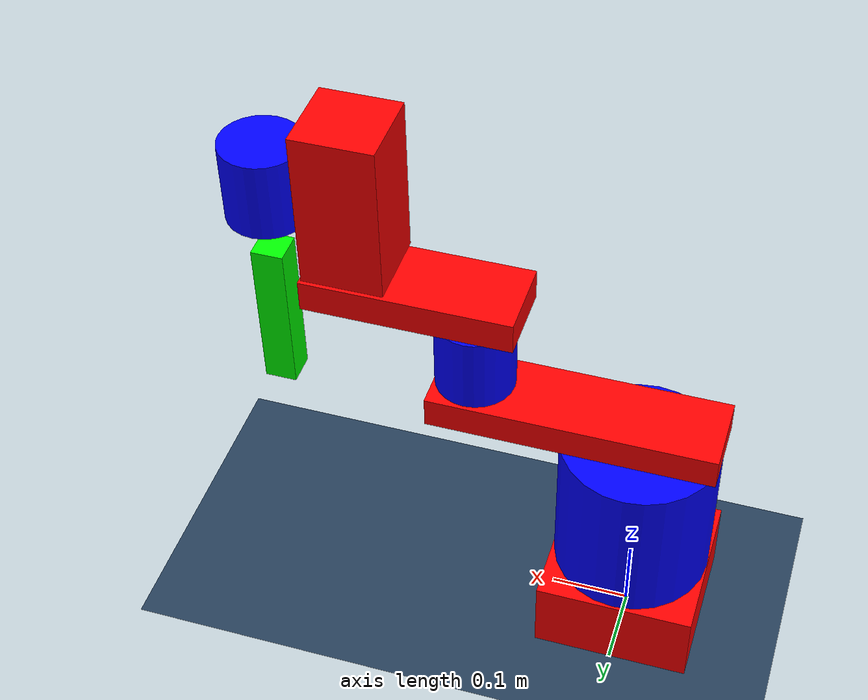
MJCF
<mujoco>
  <asset>
    <texture name="grid" type="2d" builtin="checker" rgb1=".1 .2 .3"
     rgb2=".2 .3 .4" width="300" height="300" mark="none"/>
    <material name="grid" texture="grid" texrepeat="1 1"
     texuniform="true" reflectance=".1"/>
  </asset>

  <visual>
    <scale framelength="0.2" framewidth="0.02"/>
  </visual>

  <default>
  <joint armature="0.01" damping="100."/>
  </default>

  <worldbody>

    <light name="light" pos="0 0 4"/>
    <geom name="floor" type="plane" pos="0 0 0" size="30 30 .01" material="grid" friction=".001"/>
    <camera name="fixed" pos="0 -1.5 2." euler="45 0 0"/>

    <!-- Scara base-->
    <body name="scara_base" pos="0 0 0.05" euler = "0 0 0">
        <geom name="scara_base_geom" type="box" size="0.1 0.1 0.05" rgba="1 0 0 1"/>

        <!-- first Joint -->
        <body name="first_joint_body" pos="0 0 0.254">
            <geom name="first_joint_geom" type="cylinder" size="0.1 0.10" rgba="0 0 1 1" pos="0 0 -0.1"/>
            <geom name="first_link" type="box" size="0.18 0.05 0.02" rgba="1 0 0 1" pos="0.08 0 0.025"/>
            <joint name="first_joint" type="hinge"/>

            <!-- Second -->
            <body name="second_joint_body" pos="0.210 0 0">
                <geom name="second_joint_geom" type="cylinder" size="0.05 0.05" rgba="0 0 1 1" pos="0 0 0.1"/>
                <geom name="second_link_a" type="box" size="0.13 0.05 0.02" rgba="1 0 0 1" pos="0.07 0 0.175"/>
                <geom name="second_link_b" type="box" size="0.05 0.05 0.1" rgba="1 0 0 1" pos="0.145 0 0.3"/>
                <joint name="second_joint" type="hinge"/>

                <!-- Third -->
                <body name="third_joint_body" pos="0.250 0 0">
                    <geom name="third_joint_geom" type="cylinder" size="0.05 0.05" rgba="0 0 1 1" pos="0 0 0.3"/>
                    <joint name="third_joint" type="hinge"/>

                    <!-- Fourth -->
                    <body name="fourth_joint_body" pos="0 0 0">
                        <geom name="fourth_joint_geom" type="box" size="0.02 0.02 0.1" rgba="0 1 0 1" pos="0 0 0.1"/>
                        <joint name="fourth_joint" type="slide"/>
                    </body>
                </body>
            </body>
        </body>
    </body>

  </worldbody>

    <actuator>

        <position name="J_3" joint="third_joint" kp="5000" />
        <position name="J_4" joint="fourth_joint" kp="500"/>
        <motor name="first_motor" joint="first_joint" gear="100"/>
        <motor name="second_motor" joint="second_joint" gear="100" />

    </actuator>

</mujoco>
